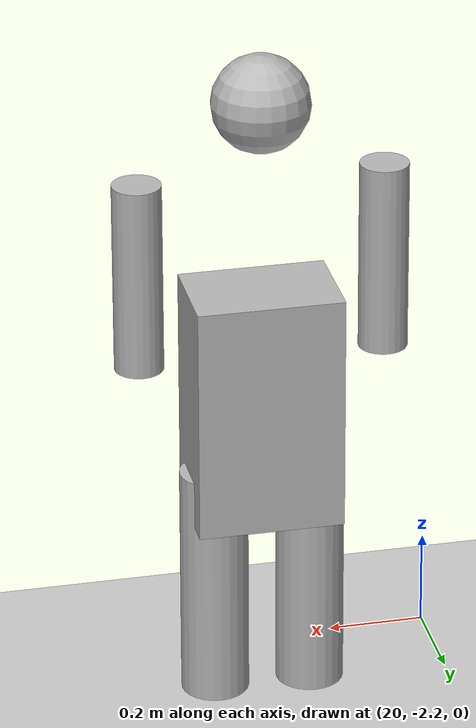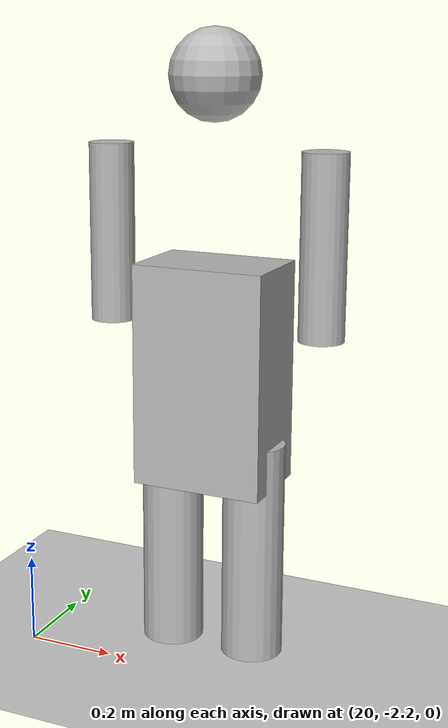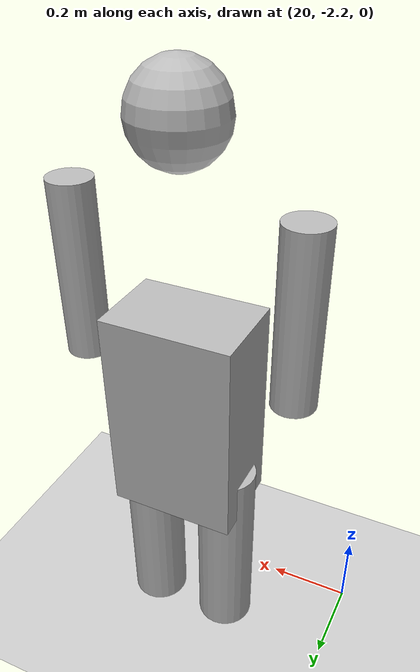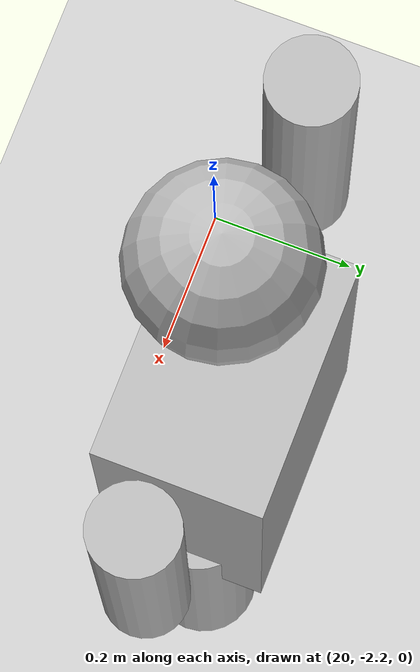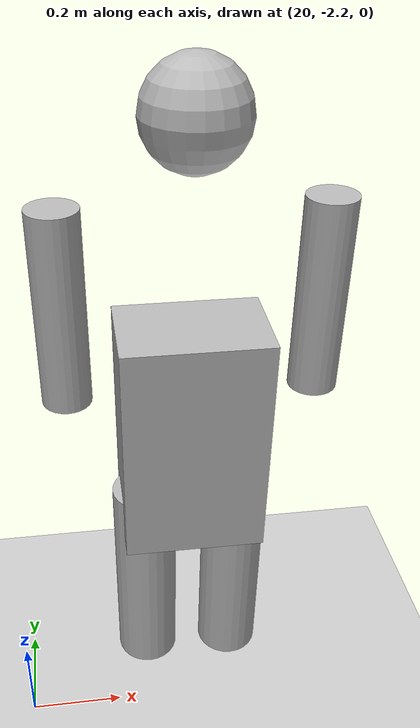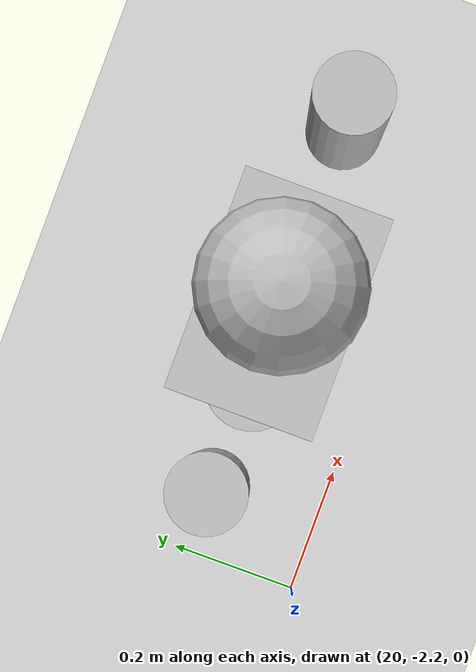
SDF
<sdf version="1.6">
 <world name="default">
  <model name="ground_plane">
   <static>1</static>
   <link name="link">
    <collision name="collision">
     <geometry><plane><normal>0 0 1</normal><size>100 100</size></plane></geometry>
     <surface><friction><ode><mu>100</mu><mu2>50</mu2></ode></friction></surface>
    </collision>
    <visual name="visual">
     <cast_shadows>0</cast_shadows>
     <geometry><plane><normal>0 0 1</normal><size>100 100</size></plane></geometry>
     <material>
      <script><uri>file://media/materials/scripts/gazebo.material</uri><name>Gazebo/Grey</name></script>
     </material>
    </visual>
   </link>
  </model>
  <model name="HumanoidRobot">
   <static>0</static>
   <link name="torso">
    <pose>0 0 1 0 -0 0</pose>
    <inertial>
     <mass>10</mass>
     <inertia><ixx>1</ixx><ixy>0</ixy><ixz>0</ixz><iyy>1</iyy><iyz>0</iyz><izz>1</izz></inertia>
    </inertial>
    <collision name="collision"><geometry><box><size>0.3 0.2 0.5</size></box></geometry></collision>
    <visual name="visual"><geometry><box><size>0.3 0.2 0.5</size></box></geometry></visual>
   </link>
   <link name="head">
    <pose>0 0 1.65 0 -0 0</pose>
    <inertial>
     <mass>2</mass>
     <inertia><ixx>1</ixx><ixy>0</ixy><ixz>0</ixz><iyy>1</iyy><iyz>0</iyz><izz>1</izz></inertia>
    </inertial>
    <collision name="collision"><geometry><sphere><radius>0.1</radius></sphere></geometry></collision>
    <visual name="visual"><geometry><sphere><radius>0.1</radius></sphere></geometry></visual>
   </link>
   <joint name="neck_joint" type="revolute">
    <parent>torso</parent>
    <child>head</child>
    <pose>0 0 1.4 0 -0 0</pose>
    <axis>
     <xyz>0 1 0</xyz>
     <limit><lower>-1.57</lower><upper>1.57</upper></limit>
     <use_parent_model_frame>0</use_parent_model_frame>
     <dynamics><spring_reference>0</spring_reference><spring_stiffness>0</spring_stiffness></dynamics>
    </axis>
   </joint>
   <link name="left_arm">
    <pose>-0.25 0 1.3 0 -0 0</pose>
    <inertial>
     <mass>1</mass>
     <inertia><ixx>1</ixx><ixy>0</ixy><ixz>0</ixz><iyy>1</iyy><iyz>0</iyz><izz>1</izz></inertia>
    </inertial>
    <collision name="collision">
     <geometry><cylinder><radius>0.05</radius><length>0.4</length></cylinder></geometry>
    </collision>
    <visual name="visual">
     <geometry><cylinder><radius>0.05</radius><length>0.4</length></cylinder></geometry>
    </visual>
   </link>
   <joint name="left_shoulder_joint" type="revolute">
    <parent>torso</parent>
    <child>left_arm</child>
    <pose>-0.15 0 1.3 0 -0 0</pose>
    <axis>
     <xyz>1 0 0</xyz>
     <limit><lower>-1.57</lower><upper>1.57</upper></limit>
     <use_parent_model_frame>0</use_parent_model_frame>
     <dynamics><spring_reference>0</spring_reference><spring_stiffness>0</spring_stiffness></dynamics>
    </axis>
   </joint>
   <link name="right_arm">
    <pose>0.25 0 1.3 0 -0 0</pose>
    <inertial>
     <mass>1</mass>
     <inertia><ixx>1</ixx><ixy>0</ixy><ixz>0</ixz><iyy>1</iyy><iyz>0</iyz><izz>1</izz></inertia>
    </inertial>
    <collision name="collision">
     <geometry><cylinder><radius>0.05</radius><length>0.4</length></cylinder></geometry>
    </collision>
    <visual name="visual">
     <geometry><cylinder><radius>0.05</radius><length>0.4</length></cylinder></geometry>
    </visual>
   </link>
   <joint name="right_shoulder_joint" type="revolute">
    <parent>torso</parent>
    <child>right_arm</child>
    <pose>0.15 0 1.3 0 -0 0</pose>
    <axis>
     <xyz>1 0 0</xyz>
     <limit><lower>-1.57</lower><upper>1.57</upper></limit>
     <use_parent_model_frame>0</use_parent_model_frame>
     <dynamics><spring_reference>0</spring_reference><spring_stiffness>0</spring_stiffness></dynamics>
    </axis>
   </joint>
   <link name="left_leg">
    <pose>-0.1 0 0.6 0 -0 0</pose>
    <inertial>
     <mass>3</mass>
     <inertia><ixx>1</ixx><ixy>0</ixy><ixz>0</ixz><iyy>1</iyy><iyz>0</iyz><izz>1</izz></inertia>
    </inertial>
    <collision name="collision">
     <geometry><cylinder><radius>0.07</radius><length>0.5</length></cylinder></geometry>
    </collision>
    <visual name="visual">
     <geometry><cylinder><radius>0.07</radius><length>0.5</length></cylinder></geometry>
    </visual>
   </link>
   <joint name="left_hip_joint" type="revolute">
    <parent>torso</parent>
    <child>left_leg</child>
    <pose>-0.1 0 1 0 -0 0</pose>
    <axis>
     <xyz>1 0 0</xyz>
     <limit><lower>-1.57</lower><upper>1.57</upper></limit>
     <use_parent_model_frame>0</use_parent_model_frame>
     <dynamics><spring_reference>0</spring_reference><spring_stiffness>0</spring_stiffness></dynamics>
    </axis>
   </joint>
   <link name="right_leg">
    <pose>0.1 0 0.6 0 -0 0</pose>
    <inertial>
     <mass>3</mass>
     <inertia><ixx>1</ixx><ixy>0</ixy><ixz>0</ixz><iyy>1</iyy><iyz>0</iyz><izz>1</izz></inertia>
    </inertial>
    <collision name="collision">
     <geometry><cylinder><radius>0.07</radius><length>0.5</length></cylinder></geometry>
    </collision>
    <visual name="visual">
     <geometry><cylinder><radius>0.07</radius><length>0.5</length></cylinder></geometry>
    </visual>
   </link>
   <joint name="right_hip_joint" type="revolute">
    <parent>torso</parent>
    <child>right_leg</child>
    <pose>0.1 0 1 0 -0 0</pose>
    <axis>
     <xyz>1 0 0</xyz>
     <limit><lower>-1.57</lower><upper>1.57</upper></limit>
     <use_parent_model_frame>0</use_parent_model_frame>
     <dynamics><spring_reference>0</spring_reference><spring_stiffness>0</spring_stiffness></dynamics>
    </axis>
   </joint>
   <pose>20.3842 -2.03104 -0.35 0.000124 -4e-06 -0.003402</pose>
  </model>
 </world>
</sdf>
